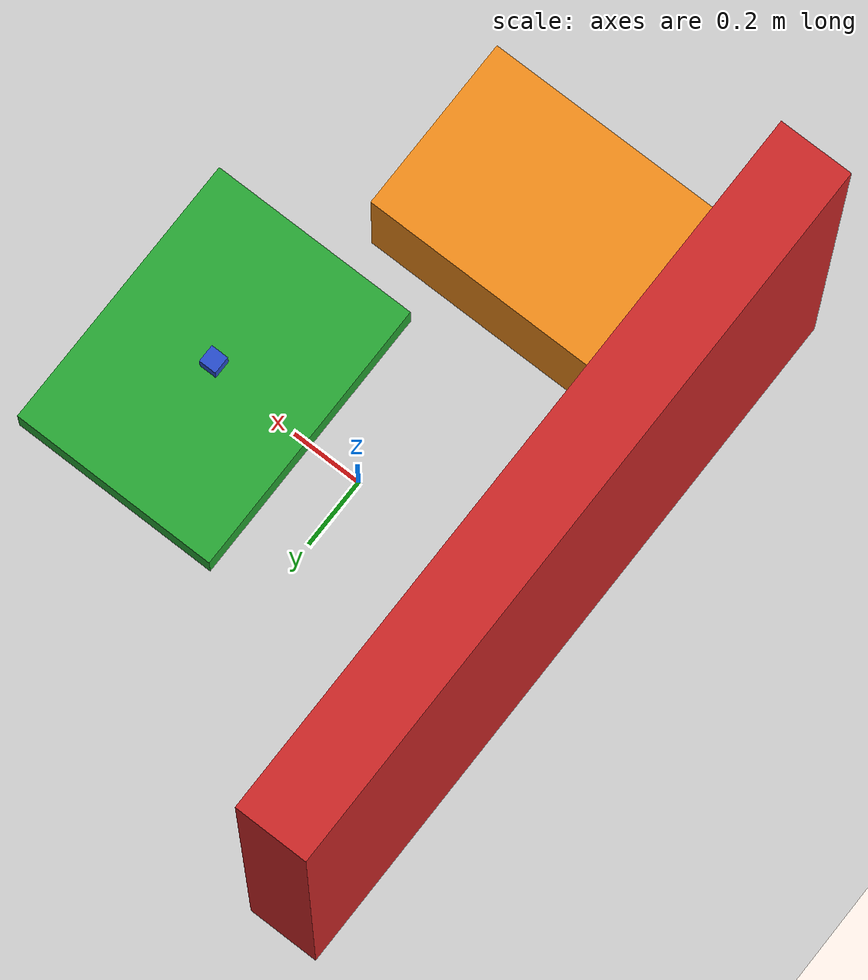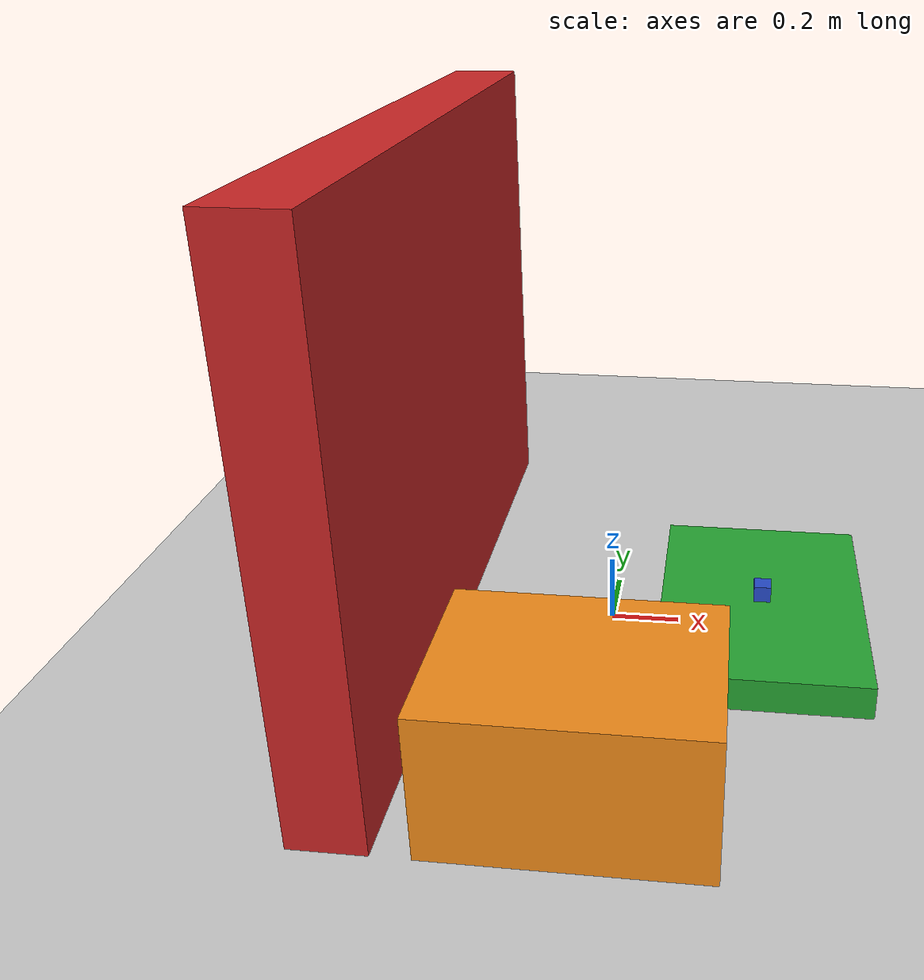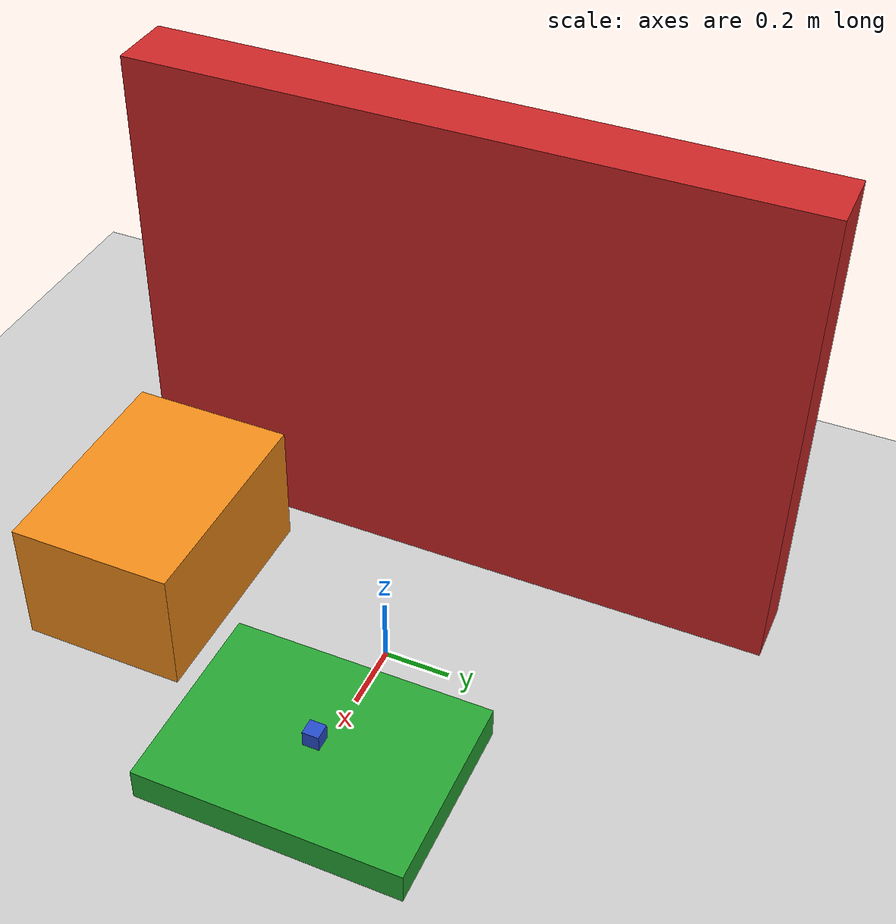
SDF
<?xml version="1.0"?>
  <sdf version='1.7'>
    <world name='default'>

      <!-- Simulation lights -->
      <light name='sun' type='directional'>
        <cast_shadows>1</cast_shadows>
        <pose>0 0 10 0 -0 0</pose>
        <diffuse>0.8 0.8 0.8 1</diffuse>
        <specular>0.2 0.2 0.2 1</specular>
        <attenuation>
          <range>1000</range>
          <constant>0.9</constant>
          <linear>0.01</linear>
          <quadratic>0.001</quadratic>
        </attenuation>
        <direction>-0.5 0.1 -0.9</direction>
        <spot>
          <inner_angle>0</inner_angle>
          <outer_angle>0</outer_angle>
          <falloff>0</falloff>
        </spot>
      </light>

      <!-- Simulation plane -->
      <model name='ground_plane'>
        <static>1</static>
        <link name='link'>
          <collision name='collision'>
            <geometry>
              <plane>
                <normal>0 0 1</normal>
                <size>100 100</size>
              </plane>
            </geometry>
            <surface>
              <contact>
                <collide_bitmask>65535</collide_bitmask>
                <ode/>
              </contact>
              <friction>
                <ode>
                  <mu>100</mu>
                  <mu2>50</mu2>
                </ode>
                <torsional>
                  <ode/>
                </torsional>
              </friction>
              <bounce/>
            </surface>
            <max_contacts>10</max_contacts>
          </collision>
          <visual name='visual'>
            <cast_shadows>0</cast_shadows>
            <geometry>
              <plane>
                <normal>0 0 1</normal>
                <size>100 100</size>
              </plane>
            </geometry>
            <material>
              <script>
                <uri>file://media/materials/scripts/gazebo.material</uri>
                <name>Gazebo/Grey</name>
              </script>
            </material>
          </visual>
          <self_collide>0</self_collide>
          <enable_wind>0</enable_wind>
          <kinematic>0</kinematic>
        </link>
      </model>

      <!-- Simulation parameters -->
      <gravity>0 0 -9.8</gravity>
      <magnetic_field>6e-06 2.3e-05 -4.2e-05</magnetic_field>
      <atmosphere type='adiabatic'/>
      <physics type='ode'>
        <max_step_size>0.001</max_step_size>
        <real_time_factor>1</real_time_factor>
        <real_time_update_rate>1000</real_time_update_rate>
      </physics>
      <scene>
        <ambient>0.4 0.4 0.4 1</ambient>
        <background>0.7 0.7 0.7 1</background>
        <!-- Tag to enable or disable shadows -->
        <shadows>1</shadows>
      </scene>
      <wind/>
      <spherical_coordinates>
        <surface_model>EARTH_WGS84</surface_model>
        <latitude_deg>0</latitude_deg>
        <longitude_deg>0</longitude_deg>
        <elevation>0</elevation>
        <heading_deg>0</heading_deg>
      </spherical_coordinates>

      <!-- Simulation objects -->
      <model name='pick_box'>
        <pose>0.45 0 0.05 0 -0 0</pose>  <!-- Position and orientation of the first box -->
        <link name='link'>
          <inertial>
            <mass>1</mass>
            <inertia>
              <ixx>0.166667</ixx>
              <ixy>0</ixy>
              <ixz>0</ixz>
              <iyy>0.166667</iyy>
              <iyz>0</iyz>
              <izz>0.166667</izz>
            </inertia>
            <pose>0 0 0 0 -0 0</pose>
          </inertial>
          <collision name='collision'>
            <geometry>
              <box>
                <size>0.6 0.8 0.1</size>  <!-- Size of the collision box for the first box -->
              </box>
            </geometry>
            <max_contacts>10</max_contacts>
            <surface>
              <contact>
                <ode/>
              </contact>
              <bounce/>
              <friction>
                <torsional>
                  <ode/>
                </torsional>
                <ode/>
              </friction>
            </surface>
          </collision>
          <visual name='visual'>
            <geometry>
              <box>
                <size>0.6 0.8 0.1</size>  <!-- Size of the visual box for the first box -->
              </box>
            </geometry>
            <material>
              <script>
                <name>Gazebo/Green</name>
                <uri>file://media/materials/scripts/gazebo.material</uri>
              </script>
            </material>
          </visual>
          <self_collide>0</self_collide>
          <enable_wind>0</enable_wind>
          <kinematic>0</kinematic>
        </link>
      </model>

      <model name='place_box'>
        <pose>0 -0.75 0.2 0 -0 0</pose> <!-- Position and orientation of the second box-->
        <link name='link'>
          <inertial>
            <mass>1</mass>
            <inertia>
              <ixx>0.166667</ixx>
              <ixy>0</ixy>
              <ixz>0</ixz>
              <iyy>0.166667</iyy>
              <iyz>0</iyz>
              <izz>0.166667</izz>
            </inertia>
            <pose>0 0 0 0 -0 0</pose>
          </inertial>
          <collision name='collision'>
            <geometry>
              <box>
                <size>0.7 0.5 0.4</size>  <!-- Size of the collision box for the second box -->
              </box>
            </geometry>
            <max_contacts>10</max_contacts>
            <surface>
              <contact>
                <ode/>
              </contact>
              <bounce/>
              <friction>
                <torsional>
                  <ode/>
                </torsional>
                <ode/>
              </friction>
            </surface>
          </collision>
          <visual name='visual'>
            <geometry>
              <box>
                <size>0.7 0.5 0.4</size>  <!-- Size of the visual box for the second box -->
              </box>
            </geometry>
            <material>
              <script>
                <name>Gazebo/Orange</name>
                <uri>file://media/materials/scripts/gazebo.material</uri>
              </script>
            </material>
          </visual>
          <self_collide>0</self_collide>
          <enable_wind>0</enable_wind>
          <kinematic>0</kinematic>
        </link>
      </model>

      <!-- Add a back wall behid the robot, at 0.45m -->
      <model name='back_wall'>
        <pose>-0.55 0 0.75 0 -0 0</pose>
        <link name='link'>
          <inertial>
            <mass>1</mass>
            <inertia>
              <ixx>0.166667</ixx>
              <ixy>0</ixy>
              <ixz>0</ixz>
              <iyy>0.166667</iyy>
              <iyz>0</iyz>
              <izz>0.166667</izz>
            </inertia>
            <pose>0 0 0 0 -0 0</pose>
          </inertial>
          <collision name='collision'>
            <geometry>
              <box>
                <size>0.2 2.0 1.5</size>
              </box>
            </geometry>
            <max_contacts>10
            </max_contacts>
            <surface>
              <contact>
                <ode/>
              </contact>
              <bounce/>
              <friction>
                <torsional>
                  <ode/>
                </torsional>
                <ode/>
              </friction>
            </surface>
          </collision>
          <visual name='visual'>
            <geometry>
              <box>
                <size>0.2 2.0 1.5</size>
              </box>
            </geometry>
            <material>
              <script>
                <name>Gazebo/Red</name>
                <uri>file://media/materials/scripts/gazebo.material</uri>
              </script>
            </material>
          </visual>
          <self_collide>0</self_collide>
          <enable_wind>0</enable_wind>
          <kinematic>0</kinematic>
        </link>
      </model>

      <!-- Simulation object-->
      <!-- A stone (a simple box), with a mass of 1kg, and a size of 0.2x0.2x0.4m and placed above the center of the pick box -->
      <model name='stone'>
        <pose>0.45 0 0.1 0 -0 0</pose>
        <link name='link'>
          <inertial>
            <mass>1</mass>
            <inertia>
              <ixx>0.0166667</ixx>
              <ixy>0</ixy>
              <ixz>0</ixz>
              <iyy>0.0166667</iyy>
              <iyz>0</iyz>
              <izz>0.0333333</izz>
            </inertia>
            <pose>0 0 0 0 -0 0</pose>
          </inertial>
          <collision name='collision'>
            <geometry>
              <box>
                <size>0.05 0.05 0.1</size>
              </box>
            </geometry>
            <max_contacts>10</max_contacts>
            <surface>
              <contact>
                <collide_bitmask>65535</collide_bitmask>
                <ode/>
              </contact>
              <friction>
                <ode>
                  <mu>100</mu>
                  <mu2>50</mu2>
                </ode>
                <torsional>
                  <ode/>
                </torsional>
              </friction>
              <bounce/>
            </surface>
          </collision>
          <visual name='visual'>
            <geometry>
              <box>
                <size>0.05 0.05 0.1</size>
              </box>
            </geometry>
            <material>
              <script>
                <name>Gazebo/Blue</name>
                <uri>file://media/materials/scripts/gazebo.material</uri>
              </script>
            </material>
          </visual>
          <self_collide>0</self_collide>
          <enable_wind>0</enable_wind>
          <kinematic>0</kinematic>
        </link>
      </model>

      <gui fullscreen='0'>
        <camera name='user_camera'>
          <pose>8.74559 -3.87758 4.86907 -0 0.371085 2.5431</pose>
          <view_controller>orbit</view_controller>
          <projection_type>perspective</projection_type>
        </camera>
      </gui>

    </world>
  </sdf>
